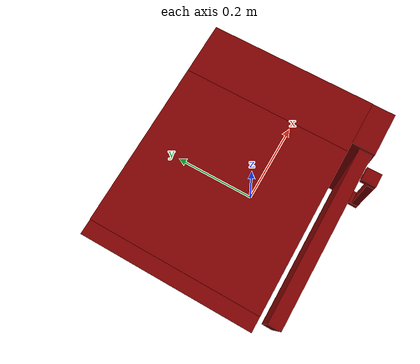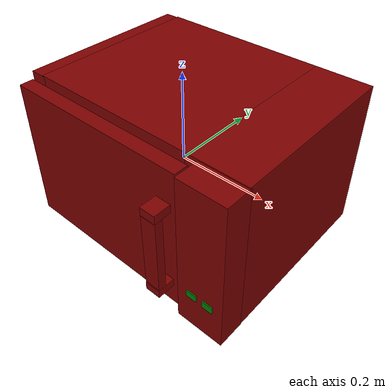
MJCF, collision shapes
<mujoco model="model">
  <compiler angle="radian"/>
  <asset>
    <mesh file="visuals/door.obj" name="door_vis"/>
    <mesh file="visuals/door_Clear.obj" name="door_Clear_vis"/>
    <mesh file="visuals/Body001.obj" name="Body001_vis"/>
    <mesh file="visuals/Disc001.obj" name="Disc001_vis"/>
    <texture file="visuals/T_BC001.png" name="Body001_material" type="2d"/>
    <material name="Body001_material" rgba="1 1 1 1.0" texture="Body001_material" shininess="2" specular="2"/>
    <texture file="visuals/T_BC001.png" name="door_material" type="2d"/>
    <material name="door_material" rgba="1 1 1 1.0" texture="door_material" shininess="2" specular="2"/>
    <material name="door_Clear_material" rgba="0.02316936105489731 0.02316936105489731 0.02316936105489731 0.8449280261993408" shininess="1" specular="1"/>
    <texture file="visuals/T_BC001.png" name="Disc001_material" type="2d"/>
    <material name="Disc001_material" rgba="1 1 1 1.0" texture="Disc001_material" shininess="1" specular="1"/>
  </asset>
  <default>
    <default class="visual">
      <geom conaffinity="0" contype="0" group="1" type="mesh"/>
    </default>
    <default class="collision">
      <geom group="0" rgba="0.5 0 0 0.5"/>
    </default>
    <default class="spawn">
      <geom group="0" rgba="1 1 1 0.5" contype="0" conaffinity="0"/>
      <site group="0" rgba="1 1 1 0.5"/>
    </default>
    <default class="region">
      <geom group="1" conaffinity="0" contype="0" rgba="0 1 0 0"/>
    </default>
  </default>
  <worldbody>
    <body>
      <body name="object">
        <geom class="collision" type="box" pos="-0.041196 0.047991 -0.101936" size="0.1278975009918213 0.1278975009918213 0.003282566787675023" quat="1.0 0.0 0.0 0.0" name="tray" rgba="0 1 0 0.5"/>
        <geom class="collision" type="box" pos="0.240619 -0.206037 -0.083508" size="0.011443782597780228 0.0012124379863962531 0.007463434711098671" quat="1.0 0.0 0.0 0.0" name="start_button" rgba="0.0 0.5 0 0.5"/>
        <geom class="collision" type="box" pos="0.204369 -0.206037 -0.083233" size="0.010885164141654968 0.001153250108473003 0.007099094334989786" quat="1.0 0.0 0.0 0.0" name="stop_button" rgba="0.0 0.5 0 0.5"/>
        <geom mesh="Body001_vis" type="mesh" solimp="0.998 0.998 0.001" solref="0.001 1" density="100" friction="0.95 0.3 0.1" class="visual" material="Body001_material"/>
        <geom class="collision" type="box" pos="-0.252862 0.045905 0.000000" size="0.019311150535941124 0.19589221477508545 0.16746601462364197" quat="1.0 0.0 0.0 0.0"/>
        <geom class="collision" type="box" pos="0.206744 0.045905 0.000940" size="0.06484981626272202 0.19589221477508545 0.1684056967496872" quat="1.0 0.0 0.0 0.0"/>
        <geom class="collision" type="box" pos="-0.043230 0.224260 0.000000" size="0.19429098069667816 0.017536791041493416 0.16746601462364197" quat="1.0 0.0 0.0 0.0"/>
        <geom class="collision" type="box" pos="-0.043230 0.035232 -0.140141" size="0.19429098069667816 0.18032829463481903 0.02732502669095993" quat="1.0 0.0 0.0 0.0"/>
        <geom class="collision" type="box" pos="-0.045615 0.045905 0.148637" size="0.19266095757484436 0.19589221477508545 0.020708730444312096" quat="1.0 0.0 0.0 0.0"/>
        <geom class="collision" type="box" pos="0.220720 -0.175179 -0.000268" size="0.0514531284570694 0.028888816013932228 0.16719812154769897" quat="1.0 0.0 0.0 0.0"/>
        <body name="door">
          <joint axis="0.0 0.0 1.0" pos="-0.245151 -0.176445 0.008081" limited="true" name="microjoint" range="-1.5707963267948966 0.0" type="hinge" damping="1" frictionloss="1" armature=".01" stiffness="0.05"/>
          <geom mesh="door_vis" type="mesh" solimp="0.998 0.998 0.001" solref="0.001 1" density="100" friction="0.95 0.3 0.1" class="visual" material="door_material"/>
          <geom class="collision" type="box" pos="-0.038951 -0.183814 0.008797" size="0.20413893461227417 0.014991610310971737 0.15809066593647003" quat="1.0 0.0 0.0 0.0"/>
          <geom class="collision" type="box" pos="0.144891 -0.224022 0.098988" size="0.016223782673478127 0.01821109838783741 0.008662233129143715" quat="1.0 0.0 0.0 0.0"/>
          <geom class="collision" type="box" pos="0.144891 -0.224022 -0.082018" size="0.016223782673478127 0.01821109838783741 0.008662233129143715" quat="1.0 0.0 0.0 0.0"/>
          <geom class="collision" type="box" pos="0.144891 -0.233382 0.008925" size="0.016223782673478127 0.008541478775441647 0.0799010619521141" quat="1.0 0.0 0.0 0.0" name="door_handle"/>
          <body name="door_Clear">
            <geom mesh="door_Clear_vis" type="mesh" solimp="0.998 0.998 0.001" solref="0.001 1" density="100" friction="0.95 0.3 0.1" class="visual" material="door_Clear_material"/>
            <geom class="collision" type="box" pos="-0.052760 -0.184096 0.005859" size="0.1582612842321396 0.00567729864269495 0.08158760517835617" quat="1.0 0.0 0.0 0.0"/>
          </body>
        </body>
        <body name="Disc001">
          <joint axis="0.0 0.0 1.0" pos="-0.040645 0.047215 -0.105237" limited="false" name="Disc001_joint" range="0 360" type="hinge" damping="1" frictionloss="1" armature=".01" stiffness="0.05"/>
          <geom mesh="Disc001_vis" type="mesh" solimp="0.998 0.998 0.001" solref="0.001 1" density="100" friction="0.95 0.3 0.1" class="visual" material="Disc001_material"/>
          <geom class="collision" type="cylinder" pos="-0.041196 0.047991 -0.108507" size="0.1278975009918213 0.002465267898514867" quat="1.0 0.0 0.0 0.0"/>
        </body>
        <geom class="region" name="reg_main" type="box" pos="0.0 0.018815500000000013 0.0" size="0.272173 0.2229815 0.169345"/>
        <geom class="region" name="reg_int" type="box" pos="-0.046901 0.03251950000000001 0.008050000000000002" size="0.189255 0.1776605 0.122201"/>
      </body>
    </body>
  </worldbody>
  <actuator>
    <motor name="microjoint_actuator" joint="microjoint" gear="10"/>
    <motor name="Disc001_joint_actuator" joint="Disc001_joint" gear="10"/>
  </actuator>
</mujoco>
